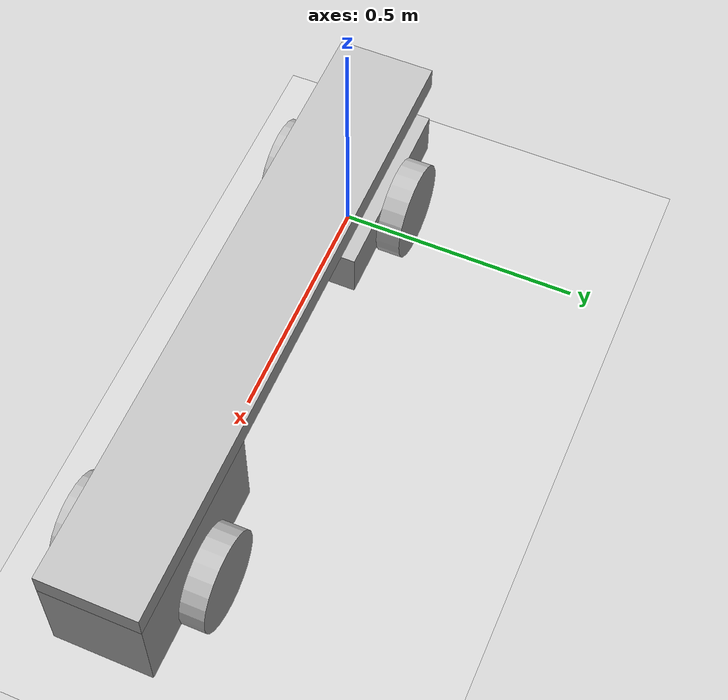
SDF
<sdf version="1.6">
 <world name="default">
  <light name="sun" type="directional">
   <pose>0 0 10 0 -0 0</pose>
   <diffuse>0.8 0.8 0.8 1</diffuse>
   <specular>0.1 0.1 0.1 1</specular>
   <attenuation>
    <range>1000</range>
    <constant>0.9</constant>
    <linear>0.01</linear>
    <quadratic>0.001</quadratic>
   </attenuation>
   <direction>-0.5 0.5 -1</direction>
  </light>
  <model name="ground_plane">
   <static>1</static>
   <link name="link">
    <collision name="collision">
     <geometry><plane><normal>0 0 1</normal><size>100 100</size></plane></geometry>
     <surface><friction><ode><mu>100</mu><mu2>50</mu2></ode></friction></surface>
    </collision>
    <visual name="visual">
     <cast_shadows>0</cast_shadows>
     <geometry><plane><normal>0 0 1</normal><size>100 100</size></plane></geometry>
     <material>
      <script><uri>file://media/materials/scripts/gazebo.material</uri><name>Gazebo/Grey</name></script>
     </material>
    </visual>
   </link>
  </model>
  <gravity>0 0 -9.8</gravity>
  <magnetic_field>6e-06 2.3e-05 -4.2e-05</magnetic_field>
  <atmosphere type="adiabatic"/>
  <physics name="default_physics" default="0" type="ode">
   <max_step_size>0.001</max_step_size>
   <real_time_factor>1</real_time_factor>
   <real_time_update_rate>1000</real_time_update_rate>
  </physics>
  <scene><ambient>0.4 0.4 0.4 1</ambient><background>0.7 0.7 0.7 1</background><shadows>1</shadows></scene>
  <spherical_coordinates>
   <surface_model>EARTH_WGS84</surface_model>
   <latitude_deg>0</latitude_deg>
   <longitude_deg>0</longitude_deg>
   <elevation>0</elevation>
   <heading_deg>0</heading_deg>
  </spherical_coordinates>
  <model name="primer_AGV">
   <static>false</static>
   <link name="chasis">
    <pose>0 0 .1 0 0 0</pose>
    <collision name="collision"><geometry><box><size>.4 .2 .1</size></box></geometry></collision>
    <visual name="visual"><geometry><box><size>.4 .2 .1</size></box></geometry></visual>
   </link>
   <link name="rueda_izquierda_chasis">
    <pose>0 0.13 0.1 0 1.5707 1.5707</pose>
    <collision name="collision">
     <geometry><cylinder><radius>.1</radius><length>.05</length></cylinder></geometry>
    </collision>
    <visual name="visual">
     <geometry><cylinder><radius>.1</radius><length>.05</length></cylinder></geometry>
    </visual>
   </link>
   <link name="rueda_derecha_chasis">
    <pose>0 -0.13 0.1 0 1.5707 1.5707</pose>
    <collision name="collision">
     <geometry><cylinder><radius>.1</radius><length>.05</length></cylinder></geometry>
    </collision>
    <visual name="visual">
     <geometry><cylinder><radius>.1</radius><length>.05</length></cylinder></geometry>
    </visual>
   </link>
   <joint type="revolute" name="rueda_izquierda_chasis_bisagra">
    <pose>0 0 0.03 0 0 0</pose>
    <child>rueda_izquierda_chasis</child>
    <parent>chasis</parent>
    <axis><xyz>0 0 1</xyz></axis>
   </joint>
   <joint type="revolute" name="rueda_derecha_chasis_bisagra">
    <pose>0 0 0.03 0 0 0</pose>
    <child>rueda_derecha_chasis</child>
    <parent>chasis</parent>
    <axis><xyz>0 0 1</xyz></axis>
   </joint>
   <link name="brazo_giro">
    <pose>0 0 0.2 0 0 0</pose>
    <collision name="collision">
     <geometry><cylinder><radius>.03</radius><length>.1</length></cylinder></geometry>
    </collision>
    <visual name="visual">
     <geometry><cylinder><radius>.03</radius><length>.1</length></cylinder></geometry>
    </visual>
   </link>
   <joint type="revolute" name="brazo_giro_chassis_bisagra">
    <pose>0 0 0.15 0 0 0</pose>
    <child>brazo_giro</child>
    <parent>chasis</parent>
    <axis><xyz>0 0 1</xyz></axis>
   </joint>
   <link name="chasis_arriba">
    <pose>0.45 0 .275 0 0 0</pose>
    <collision name="collision"><geometry><box><size>1.3 .2 .05</size></box></geometry></collision>
    <visual name="visual"><geometry><box><size>1.3 .2 .05</size></box></geometry></visual>
   </link>
   <joint type="revolute" name="brazo_giro_chasis_arriba_bisagra">
    <pose>0 0 0.25 0 0 0</pose>
    <child>brazo_giro</child>
    <parent>chasis_arriba</parent>
    <axis><xyz>0 0 1</xyz></axis>
   </joint>
   <link name="chasis_trasero">
    <pose>.9 0 .15 0 0 0</pose>
    <collision name="collision"><geometry><box><size>.4 .2 .2</size></box></geometry></collision>
    <visual name="visual"><geometry><box><size>.4 .2 .2</size></box></geometry></visual>
   </link>
   <joint type="fixed" name="chasis_arriba_chasis_trasero">
    <pose>0.9 0 0.25 0 0 0</pose>
    <child>chasis_arriba</child>
    <parent>chasis_trasero</parent>
   </joint>
   <link name="rueda_izquierda_chasis_trasero">
    <pose>0.9 0.13 0.1 0 1.5707 1.5707</pose>
    <collision name="collision">
     <geometry><cylinder><radius>.1</radius><length>.05</length></cylinder></geometry>
    </collision>
    <visual name="visual">
     <geometry><cylinder><radius>.1</radius><length>.05</length></cylinder></geometry>
    </visual>
   </link>
   <link name="rueda_derecha_chasis_trasero">
    <pose>0.9 -0.13 0.1 0 1.5707 1.5707</pose>
    <collision name="collision">
     <geometry><cylinder><radius>.1</radius><length>.05</length></cylinder></geometry>
    </collision>
    <visual name="visual">
     <geometry><cylinder><radius>.1</radius><length>.05</length></cylinder></geometry>
    </visual>
   </link>
   <joint type="revolute" name="rueda_izquierda_chasis_trasero_bisagra">
    <pose>0 0 0.03 0 0 0</pose>
    <child>rueda_izquierda_chasis_trasero</child>
    <parent>chasis_trasero</parent>
    <axis><xyz>0 0 1</xyz></axis>
   </joint>
   <joint type="revolute" name="rueda_derecha_chasis_trasero_bisagra">
    <pose>0 0 0.03 0 0 0</pose>
    <child>rueda_derecha_chasis_trasero</child>
    <parent>chasis_trasero</parent>
    <axis><xyz>0 0 1</xyz></axis>
   </joint>
   <plugin name="actuador" filename="libmiRobot.so"/>
  </model>
 </world>
</sdf>
